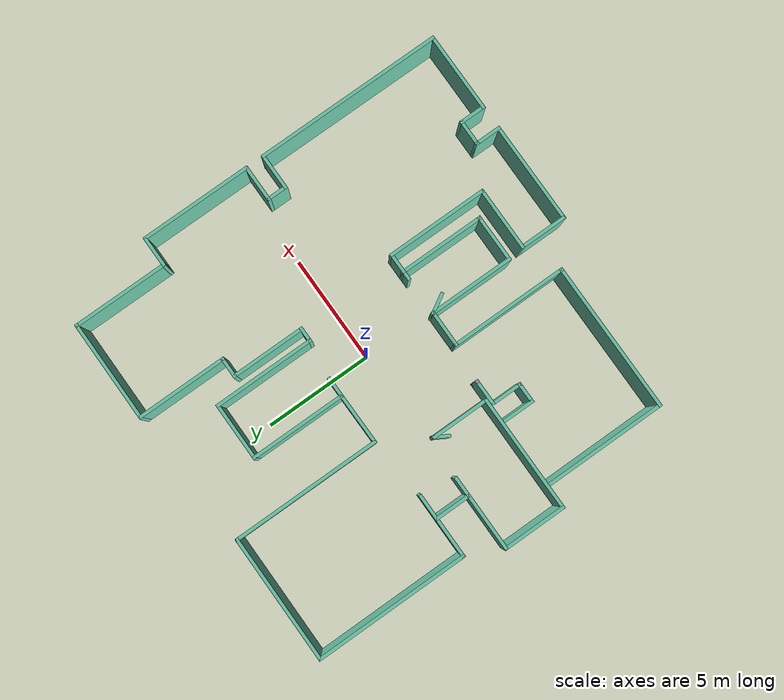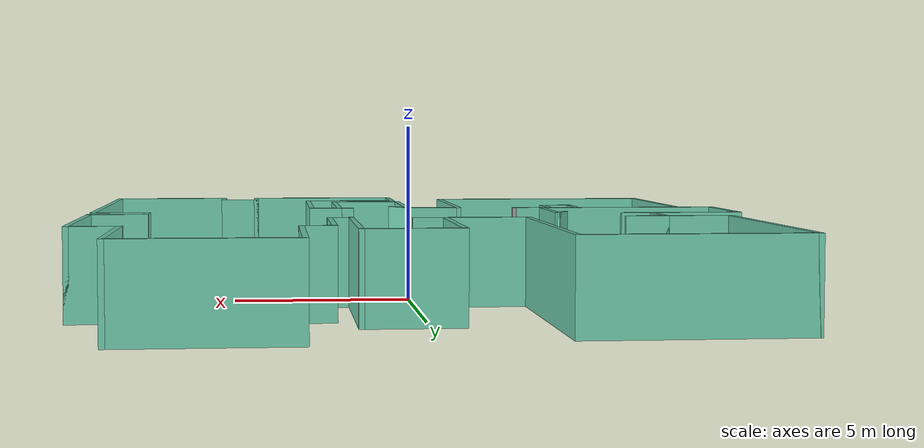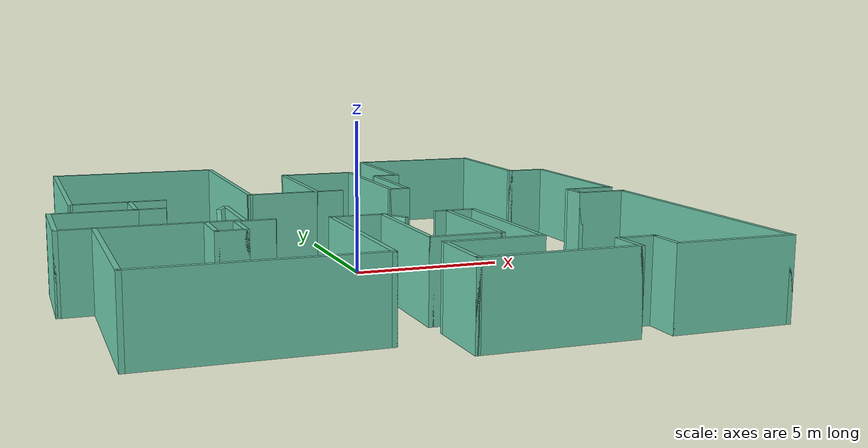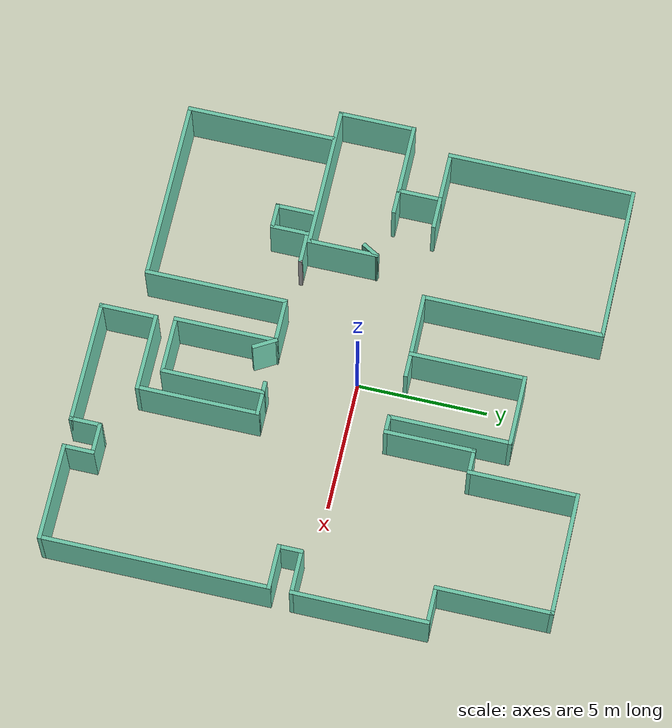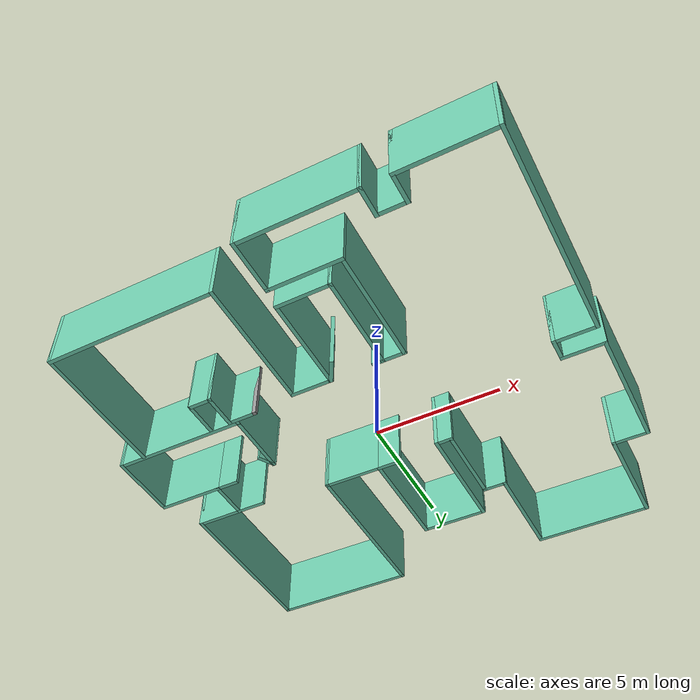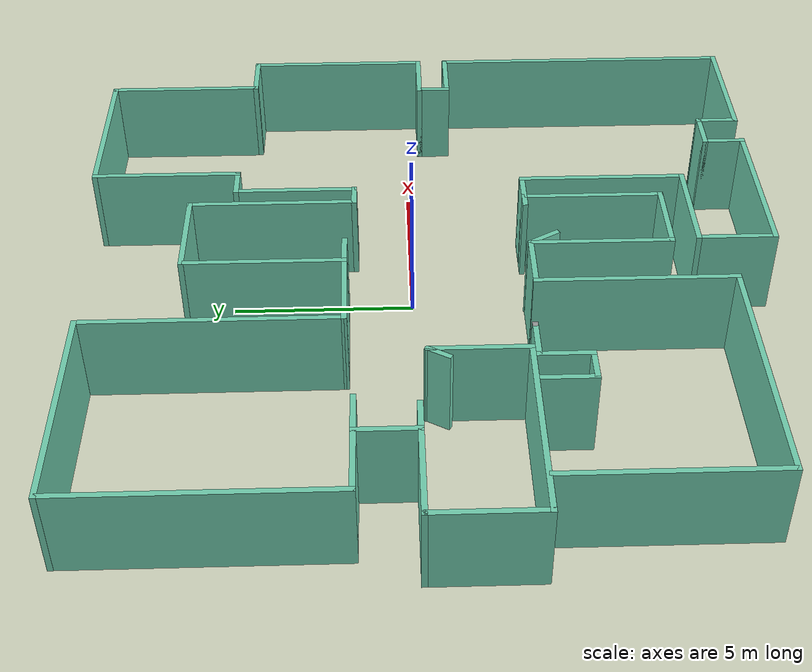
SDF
<?xml version='1.0'?>
<sdf version='1.6'>
  <model name='map_107'>
    <pose frame=''>-0.309786 -0.431329 0 0 -0 0</pose>
    <link name='Wall_10'>
      <collision name='Wall_10_Collision'>
        <geometry>
          <box>
            <size>2.75 0.15 2.5</size>
          </box>
        </geometry>
        <pose frame=''>0 0 1.25 0 -0 0</pose>
      </collision>
      <visual name='Wall_10_Visual'>
        <pose frame=''>0 0 1.25 0 -0 0</pose>
        <geometry>
          <box>
            <size>2.75 0.15 2.5</size>
          </box>
        </geometry>
        <material>
          <script>
            <uri>file://media/materials/scripts/gazebo.material</uri>
            <name>Gazebo/Grey</name>
          </script>
          <ambient>0.435294 0.796078 0.67451 1</ambient>
        </material>
        <meta>
          <layer>0</layer>
        </meta>
      </visual>
      <pose frame=''>-8.15979 0.403769 0 0 -0 3.14159</pose>
    </link>
    <link name='Wall_11'>
      <collision name='Wall_11_Collision'>
        <geometry>
          <box>
            <size>3 0.15 2.5</size>
          </box>
        </geometry>
        <pose frame=''>0 0 1.25 0 -0 0</pose>
      </collision>
      <visual name='Wall_11_Visual'>
        <pose frame=''>0 0 1.25 0 -0 0</pose>
        <geometry>
          <box>
            <size>3 0.15 2.5</size>
          </box>
        </geometry>
        <material>
          <script>
            <uri>file://media/materials/scripts/gazebo.material</uri>
            <name>Gazebo/Grey</name>
          </script>
          <ambient>0.435294 0.796078 0.67451 1</ambient>
        </material>
        <meta>
          <layer>0</layer>
        </meta>
      </visual>
      <pose frame=''>-9.45979 -1.02123 0 0 -0 -1.5708</pose>
    </link>
    <link name='Wall_12'>
      <collision name='Wall_12_Collision'>
        <geometry>
          <box>
            <size>5.5 0.15 2.5</size>
          </box>
        </geometry>
        <pose frame=''>0 0 1.25 0 -0 0</pose>
      </collision>
      <visual name='Wall_12_Visual'>
        <pose frame=''>0 0 1.25 0 -0 0</pose>
        <geometry>
          <box>
            <size>5.5 0.15 2.5</size>
          </box>
        </geometry>
        <material>
          <script>
            <uri>file://media/materials/scripts/gazebo.material</uri>
            <name>Gazebo/Grey</name>
          </script>
          <ambient>0.435294 0.796078 0.67451 1</ambient>
        </material>
        <meta>
          <layer>0</layer>
        </meta>
      </visual>
      <pose frame=''>-6.78479 -2.44623 0 0 -0 0</pose>
    </link>
    <link name='Wall_13'>
      <collision name='Wall_13_Collision'>
        <geometry>
          <box>
            <size>2.75 0.15 2.5</size>
          </box>
        </geometry>
        <pose frame=''>0 0 1.25 0 -0 0</pose>
      </collision>
      <visual name='Wall_13_Visual'>
        <pose frame=''>0 0 1.25 0 -0 0</pose>
        <geometry>
          <box>
            <size>2.75 0.15 2.5</size>
          </box>
        </geometry>
        <material>
          <script>
            <uri>file://media/materials/scripts/gazebo.material</uri>
            <name>Gazebo/Grey</name>
          </script>
          <ambient>0.435294 0.796078 0.67451 1</ambient>
        </material>
        <meta>
          <layer>0</layer>
        </meta>
      </visual>
      <pose frame=''>-4.10979 -1.14623 0 0 -0 1.5708</pose>
    </link>
    <link name='Wall_16'>
      <collision name='Wall_16_Collision'>
        <geometry>
          <box>
            <size>5.75 0.15 2.5</size>
          </box>
        </geometry>
        <pose frame=''>0 0 1.25 0 -0 0</pose>
      </collision>
      <visual name='Wall_16_Visual'>
        <pose frame=''>0 0 1.25 0 -0 0</pose>
        <geometry>
          <box>
            <size>5.75 0.15 2.5</size>
          </box>
        </geometry>
        <material>
          <script>
            <uri>file://media/materials/scripts/gazebo.material</uri>
            <name>Gazebo/Grey</name>
          </script>
          <ambient>0.435294 0.796078 0.67451 1</ambient>
        </material>
        <meta>
          <layer>0</layer>
        </meta>
      </visual>
      <pose frame=''>-8.39021 -5.325 0 0 -0 -1.5708</pose>
    </link>
    <link name='Wall_17'>
      <collision name='Wall_17_Collision'>
        <geometry>
          <box>
            <size>7 0.15 2.5</size>
          </box>
        </geometry>
        <pose frame=''>0 0 1.25 0 -0 0</pose>
      </collision>
      <visual name='Wall_17_Visual'>
        <pose frame=''>0 0 1.25 0 -0 0</pose>
        <geometry>
          <box>
            <size>7 0.15 2.5</size>
          </box>
        </geometry>
        <material>
          <script>
            <uri>file://media/materials/scripts/gazebo.material</uri>
            <name>Gazebo/Grey</name>
          </script>
          <ambient>0.435294 0.796078 0.67451 1</ambient>
        </material>
        <meta>
          <layer>0</layer>
        </meta>
      </visual>
      <pose frame=''>-4.96521 -8.125 0 0 -0 0</pose>
    </link>
    <link name='Wall_28'>
      <collision name='Wall_28_Collision'>
        <geometry>
          <box>
            <size>1.5 0.15 2.5</size>
          </box>
        </geometry>
        <pose frame=''>0 0 1.25 0 -0 0</pose>
      </collision>
      <visual name='Wall_28_Visual'>
        <pose frame=''>0 0 1.25 0 -0 0</pose>
        <geometry>
          <box>
            <size>1.5 0.15 2.5</size>
          </box>
        </geometry>
        <material>
          <script>
            <uri>file://media/materials/scripts/gazebo.material</uri>
            <name>Gazebo/Grey</name>
          </script>
          <ambient>0.435294 0.796078 0.67451 1</ambient>
        </material>
        <meta>
          <layer>0</layer>
        </meta>
      </visual>
      <pose frame=''>-5.23543 -3.27116 0 0 -0 -1.5708</pose>
    </link>
    <link name='Wall_29'>
      <collision name='Wall_29_Collision'>
        <geometry>
          <box>
            <size>1 0.15 2.5</size>
          </box>
        </geometry>
        <pose frame=''>0 0 1.25 0 -0 0</pose>
      </collision>
      <visual name='Wall_29_Visual'>
        <pose frame=''>0 0 1.25 0 -0 0</pose>
        <geometry>
          <box>
            <size>1 0.15 2.5</size>
          </box>
        </geometry>
        <material>
          <script>
            <uri>file://media/materials/scripts/gazebo.material</uri>
            <name>Gazebo/Grey</name>
          </script>
          <ambient>0.435294 0.796078 0.67451 1</ambient>
        </material>
        <meta>
          <layer>0</layer>
        </meta>
      </visual>
      <pose frame=''>-4.81043 -3.94616 0 0 -0 0</pose>
    </link>
    <link name='Wall_30'>
      <collision name='Wall_30_Collision'>
        <geometry>
          <box>
            <size>1.5 0.15 2.5</size>
          </box>
        </geometry>
        <pose frame=''>0 0 1.25 0 -0 0</pose>
      </collision>
      <visual name='Wall_30_Visual'>
        <pose frame=''>0 0 1.25 0 -0 0</pose>
        <geometry>
          <box>
            <size>1.5 0.15 2.5</size>
          </box>
        </geometry>
        <material>
          <script>
            <uri>file://media/materials/scripts/gazebo.material</uri>
            <name>Gazebo/Grey</name>
          </script>
          <ambient>0.435294 0.796078 0.67451 1</ambient>
        </material>
        <meta>
          <layer>0</layer>
        </meta>
      </visual>
      <pose frame=''>-4.38542 -3.27116 0 0 -0 1.5708</pose>
    </link>
    <link name='Wall_31'>
      <collision name='Wall_31_Collision'>
        <geometry>
          <box>
            <size>1.25 0.15 2.5</size>
          </box>
        </geometry>
        <pose frame=''>0 0 1.25 0 -0 0</pose>
      </collision>
      <visual name='Wall_31_Visual'>
        <pose frame=''>0 0 1.25 0 -0 0</pose>
        <geometry>
          <box>
            <size>1.25 0.15 2.5</size>
          </box>
        </geometry>
        <material>
          <script>
            <uri>file://media/materials/scripts/gazebo.material</uri>
            <name>Gazebo/Grey</name>
          </script>
          <ambient>0.435294 0.796078 0.67451 1</ambient>
        </material>
        <meta>
          <layer>0</layer>
        </meta>
      </visual>
      <pose frame=''>-3.83542 -2.59616 0 0 -0 0</pose>
    </link>
    <link name='Wall_32'>
      <collision name='Wall_32_Collision'>
        <geometry>
          <box>
            <size>0.16 0.15 2.5</size>
          </box>
        </geometry>
        <pose frame=''>0 0 1.25 0 -0 0</pose>
      </collision>
      <visual name='Wall_32_Visual'>
        <pose frame=''>0 0 1.25 0 -0 0</pose>
        <geometry>
          <box>
            <size>0.16 0.15 2.5</size>
          </box>
        </geometry>
        <material>
          <script>
            <uri>file://media/materials/scripts/gazebo.material</uri>
            <name>Gazebo/Grey</name>
          </script>
          <ambient>0 0 0 1</ambient>
        </material>
        <meta>
          <layer>0</layer>
        </meta>
      </visual>
      <pose frame=''>-3.28043 -2.59616 0 0 -0 0</pose>
    </link>
    <link name='Wall_33'>
      <collision name='Wall_33_Collision'>
        <geometry>
          <box>
            <size>5.5 0.15 2.5</size>
          </box>
        </geometry>
        <pose frame=''>0 0 1.25 0 -0 0</pose>
      </collision>
      <visual name='Wall_33_Visual'>
        <pose frame=''>0 0 1.25 0 -0 0</pose>
        <geometry>
          <box>
            <size>5.5 0.15 2.5</size>
          </box>
        </geometry>
        <material>
          <script>
            <uri>file://media/materials/scripts/gazebo.material</uri>
            <name>Gazebo/Grey</name>
          </script>
          <ambient>0.435294 0.796078 0.67451 1</ambient>
        </material>
        <meta>
          <layer>0</layer>
        </meta>
      </visual>
      <pose frame=''>-1.54021 -5.45 0 0 -0 1.5708</pose>
    </link>
    <link name='Wall_34'>
      <collision name='Wall_34_Collision'>
        <geometry>
          <box>
            <size>1.75 0.15 2.5</size>
          </box>
        </geometry>
        <pose frame=''>0 0 1.25 0 -0 0</pose>
      </collision>
      <visual name='Wall_34_Visual'>
        <pose frame=''>0 0 1.25 0 -0 0</pose>
        <geometry>
          <box>
            <size>1.75 0.15 2.5</size>
          </box>
        </geometry>
        <material>
          <script>
            <uri>file://media/materials/scripts/gazebo.material</uri>
            <name>Gazebo/Grey</name>
          </script>
          <ambient>0.435294 0.796078 0.67451 1</ambient>
        </material>
        <meta>
          <layer>0</layer>
        </meta>
      </visual>
      <pose frame=''>-0.74021 -2.775 0 0 -0 0</pose>
    </link>
    <link name='Wall_35'>
      <collision name='Wall_35_Collision'>
        <geometry>
          <box>
            <size>4 0.15 2.5</size>
          </box>
        </geometry>
        <pose frame=''>0 0 1.25 0 -0 0</pose>
      </collision>
      <visual name='Wall_35_Visual'>
        <pose frame=''>0 0 1.25 0 -0 0</pose>
        <geometry>
          <box>
            <size>4 0.15 2.5</size>
          </box>
        </geometry>
        <material>
          <script>
            <uri>file://media/materials/scripts/gazebo.material</uri>
            <name>Gazebo/Grey</name>
          </script>
          <ambient>0.435294 0.796078 0.67451 1</ambient>
        </material>
        <meta>
          <layer>0</layer>
        </meta>
      </visual>
      <pose frame=''>0.05979 -4.7 0 0 -0 -1.5708</pose>
    </link>
    <link name='Wall_36'>
      <collision name='Wall_36_Collision'>
        <geometry>
          <box>
            <size>2.25 0.15 2.5</size>
          </box>
        </geometry>
        <pose frame=''>0 0 1.25 0 -0 0</pose>
      </collision>
      <visual name='Wall_36_Visual'>
        <pose frame=''>0 0 1.25 0 -0 0</pose>
        <geometry>
          <box>
            <size>2.25 0.15 2.5</size>
          </box>
        </geometry>
        <material>
          <script>
            <uri>file://media/materials/scripts/gazebo.material</uri>
            <name>Gazebo/Grey</name>
          </script>
          <ambient>0.435294 0.796078 0.67451 1</ambient>
        </material>
        <meta>
          <layer>0</layer>
        </meta>
      </visual>
      <pose frame=''>1.10979 -6.625 0 0 -0 0</pose>
    </link>
    <link name='Wall_37'>
      <collision name='Wall_37_Collision'>
        <geometry>
          <box>
            <size>4 0.15 2.5</size>
          </box>
        </geometry>
        <pose frame=''>0 0 1.25 0 -0 0</pose>
      </collision>
      <visual name='Wall_37_Visual'>
        <pose frame=''>0 0 1.25 0 -0 0</pose>
        <geometry>
          <box>
            <size>4 0.15 2.5</size>
          </box>
        </geometry>
        <material>
          <script>
            <uri>file://media/materials/scripts/gazebo.material</uri>
            <name>Gazebo/Grey</name>
          </script>
          <ambient>0.435294 0.796078 0.67451 1</ambient>
        </material>
        <meta>
          <layer>0</layer>
        </meta>
      </visual>
      <pose frame=''>2.15979 -4.7 0 0 -0 1.5708</pose>
    </link>
    <link name='Wall_38'>
      <collision name='Wall_38_Collision'>
        <geometry>
          <box>
            <size>0.5 0.15 2.5</size>
          </box>
        </geometry>
        <pose frame=''>0 0 1.25 0 -0 0</pose>
      </collision>
      <visual name='Wall_38_Visual'>
        <pose frame=''>0 0 1.25 0 -0 0</pose>
        <geometry>
          <box>
            <size>0.5 0.15 2.5</size>
          </box>
        </geometry>
        <material>
          <script>
            <uri>file://media/materials/scripts/gazebo.material</uri>
            <name>Gazebo/Grey</name>
          </script>
          <ambient>0.435294 0.796078 0.67451 1</ambient>
        </material>
        <meta>
          <layer>0</layer>
        </meta>
      </visual>
      <pose frame=''>1.98479 -2.775 0 0 -0 3.14159</pose>
    </link>
    <link name='Wall_41'>
      <collision name='Wall_41_Collision'>
        <geometry>
          <box>
            <size>1 0.15 2.5</size>
          </box>
        </geometry>
        <pose frame=''>0 0 1.25 0 -0 0</pose>
      </collision>
      <visual name='Wall_41_Visual'>
        <pose frame=''>0 0 1.25 0 -0 0</pose>
        <geometry>
          <box>
            <size>1 0.15 2.5</size>
          </box>
        </geometry>
        <material>
          <script>
            <uri>file://media/materials/scripts/gazebo.material</uri>
            <name>Gazebo/Grey</name>
          </script>
          <ambient>0.435294 0.796078 0.67451 1</ambient>
        </material>
        <meta>
          <layer>0</layer>
        </meta>
      </visual>
      <pose frame=''>2.58479 -2.775 0 0 -0 0</pose>
    </link>
    <link name='Wall_42'>
      <collision name='Wall_42_Collision'>
        <geometry>
          <box>
            <size>4.75 0.15 2.5</size>
          </box>
        </geometry>
        <pose frame=''>0 0 1.25 0 -0 0</pose>
      </collision>
      <visual name='Wall_42_Visual'>
        <pose frame=''>0 0 1.25 0 -0 0</pose>
        <geometry>
          <box>
            <size>4.75 0.15 2.5</size>
          </box>
        </geometry>
        <material>
          <script>
            <uri>file://media/materials/scripts/gazebo.material</uri>
            <name>Gazebo/Grey</name>
          </script>
          <ambient>0.435294 0.796078 0.67451 1</ambient>
        </material>
        <meta>
          <layer>0</layer>
        </meta>
      </visual>
      <pose frame=''>3.00979 -5.075 0 0 -0 -1.5708</pose>
    </link>
    <link name='Wall_43'>
      <collision name='Wall_43_Collision'>
        <geometry>
          <box>
            <size>3 0.15 2.5</size>
          </box>
        </geometry>
        <pose frame=''>0 0 1.25 0 -0 0</pose>
      </collision>
      <visual name='Wall_43_Visual'>
        <pose frame=''>0 0 1.25 0 -0 0</pose>
        <geometry>
          <box>
            <size>3 0.15 2.5</size>
          </box>
        </geometry>
        <material>
          <script>
            <uri>file://media/materials/scripts/gazebo.material</uri>
            <name>Gazebo/Grey</name>
          </script>
          <ambient>0.435294 0.796078 0.67451 1</ambient>
        </material>
        <meta>
          <layer>0</layer>
        </meta>
      </visual>
      <pose frame=''>1.58479 -7.375 0 0 -0 3.14159</pose>
    </link>
    <link name='Wall_44'>
      <collision name='Wall_44_Collision'>
        <geometry>
          <box>
            <size>2.25 0.15 2.5</size>
          </box>
        </geometry>
        <pose frame=''>0 0 1.25 0 -0 0</pose>
      </collision>
      <visual name='Wall_44_Visual'>
        <pose frame=''>0 0 1.25 0 -0 0</pose>
        <geometry>
          <box>
            <size>2.25 0.15 2.5</size>
          </box>
        </geometry>
        <material>
          <script>
            <uri>file://media/materials/scripts/gazebo.material</uri>
            <name>Gazebo/Grey</name>
          </script>
          <ambient>0.435294 0.796078 0.67451 1</ambient>
        </material>
        <meta>
          <layer>0</layer>
        </meta>
      </visual>
      <pose frame=''>0.15979 -8.425 0 0 -0 -1.5708</pose>
    </link>
    <link name='Wall_47'>
      <collision name='Wall_47_Collision'>
        <geometry>
          <box>
            <size>4.75 0.15 2.5</size>
          </box>
        </geometry>
        <pose frame=''>0 0 1.25 0 -0 0</pose>
      </collision>
      <visual name='Wall_47_Visual'>
        <pose frame=''>0 0 1.25 0 -0 0</pose>
        <geometry>
          <box>
            <size>4.75 0.15 2.5</size>
          </box>
        </geometry>
        <material>
          <script>
            <uri>file://media/materials/scripts/gazebo.material</uri>
            <name>Gazebo/Grey</name>
          </script>
          <ambient>0.435294 0.796078 0.67451 1</ambient>
        </material>
        <meta>
          <layer>0</layer>
        </meta>
      </visual>
      <pose frame=''>2.45979 -9.475 0 0 -0 0</pose>
    </link>
    <link name='Wall_48'>
      <collision name='Wall_48_Collision'>
        <geometry>
          <box>
            <size>1.25 0.15 2.5</size>
          </box>
        </geometry>
        <pose frame=''>0 0 1.25 0 -0 0</pose>
      </collision>
      <visual name='Wall_48_Visual'>
        <pose frame=''>0 0 1.25 0 -0 0</pose>
        <geometry>
          <box>
            <size>1.25 0.15 2.5</size>
          </box>
        </geometry>
        <material>
          <script>
            <uri>file://media/materials/scripts/gazebo.material</uri>
            <name>Gazebo/Grey</name>
          </script>
          <ambient>0.435294 0.796078 0.67451 1</ambient>
        </material>
        <meta>
          <layer>0</layer>
        </meta>
      </visual>
      <pose frame=''>4.75979 -8.925 0 0 -0 1.5708</pose>
    </link>
    <link name='Wall_49'>
      <collision name='Wall_49_Collision'>
        <geometry>
          <box>
            <size>1.25 0.15 2.5</size>
          </box>
        </geometry>
        <pose frame=''>0 0 1.25 0 -0 0</pose>
      </collision>
      <visual name='Wall_49_Visual'>
        <pose frame=''>0 0 1.25 0 -0 0</pose>
        <geometry>
          <box>
            <size>1.25 0.15 2.5</size>
          </box>
        </geometry>
        <material>
          <script>
            <uri>file://media/materials/scripts/gazebo.material</uri>
            <name>Gazebo/Grey</name>
          </script>
          <ambient>0.435294 0.796078 0.67451 1</ambient>
        </material>
        <meta>
          <layer>0</layer>
        </meta>
      </visual>
      <pose frame=''>5.30979 -8.375 0 0 -0 0</pose>
    </link>
    <link name='Wall_50'>
      <collision name='Wall_50_Collision'>
        <geometry>
          <box>
            <size>1.25 0.15 2.5</size>
          </box>
        </geometry>
        <pose frame=''>0 0 1.25 0 -0 0</pose>
      </collision>
      <visual name='Wall_50_Visual'>
        <pose frame=''>0 0 1.25 0 -0 0</pose>
        <geometry>
          <box>
            <size>1.25 0.15 2.5</size>
          </box>
        </geometry>
        <material>
          <script>
            <uri>file://media/materials/scripts/gazebo.material</uri>
            <name>Gazebo/Grey</name>
          </script>
          <ambient>0.435294 0.796078 0.67451 1</ambient>
        </material>
        <meta>
          <layer>0</layer>
        </meta>
      </visual>
      <pose frame=''>5.85979 -8.925 0 0 -0 -1.5708</pose>
    </link>
    <link name='Wall_51'>
      <collision name='Wall_51_Collision'>
        <geometry>
          <box>
            <size>3.75 0.15 2.5</size>
          </box>
        </geometry>
        <pose frame=''>0 0 1.25 0 -0 0</pose>
      </collision>
      <visual name='Wall_51_Visual'>
        <pose frame=''>0 0 1.25 0 -0 0</pose>
        <geometry>
          <box>
            <size>3.75 0.15 2.5</size>
          </box>
        </geometry>
        <material>
          <script>
            <uri>file://media/materials/scripts/gazebo.material</uri>
            <name>Gazebo/Grey</name>
          </script>
          <ambient>0.435294 0.796078 0.67451 1</ambient>
        </material>
        <meta>
          <layer>0</layer>
        </meta>
      </visual>
      <pose frame=''>7.65979 -9.475 0 0 -0 0</pose>
    </link>
    <link name='Wall_53'>
      <collision name='Wall_53_Collision'>
        <geometry>
          <box>
            <size>1.5 0.15 2.5</size>
          </box>
        </geometry>
        <pose frame=''>0 0 1.25 0 -0 0</pose>
      </collision>
      <visual name='Wall_53_Visual'>
        <pose frame=''>0 0 1.25 0 -0 0</pose>
        <geometry>
          <box>
            <size>1.5 0.15 2.5</size>
          </box>
        </geometry>
        <material>
          <script>
            <uri>file://media/materials/scripts/gazebo.material</uri>
            <name>Gazebo/Grey</name>
          </script>
          <ambient>0.435294 0.796078 0.67451 1</ambient>
        </material>
        <meta>
          <layer>0</layer>
        </meta>
      </visual>
      <pose frame=''>8.78479 5.125 0 0 -0 3.14159</pose>
    </link>
    <link name='Wall_54'>
      <collision name='Wall_54_Collision'>
        <geometry>
          <box>
            <size>4.5 0.15 2.5</size>
          </box>
        </geometry>
        <pose frame=''>0 0 1.25 0 -0 0</pose>
      </collision>
      <visual name='Wall_54_Visual'>
        <pose frame=''>0 0 1.25 0 -0 0</pose>
        <geometry>
          <box>
            <size>4.5 0.15 2.5</size>
          </box>
        </geometry>
        <material>
          <script>
            <uri>file://media/materials/scripts/gazebo.material</uri>
            <name>Gazebo/Grey</name>
          </script>
          <ambient>0.435294 0.796078 0.67451 1</ambient>
        </material>
        <meta>
          <layer>0</layer>
        </meta>
      </visual>
      <pose frame=''>8.10979 7.3 0 0 -0 1.5708</pose>
    </link>
    <link name='Wall_55'>
      <collision name='Wall_55_Collision'>
        <geometry>
          <box>
            <size>4.75 0.15 2.5</size>
          </box>
        </geometry>
        <pose frame=''>0 0 1.25 0 -0 0</pose>
      </collision>
      <visual name='Wall_55_Visual'>
        <pose frame=''>0 0 1.25 0 -0 0</pose>
        <geometry>
          <box>
            <size>4.75 0.15 2.5</size>
          </box>
        </geometry>
        <material>
          <script>
            <uri>file://media/materials/scripts/gazebo.material</uri>
            <name>Gazebo/Grey</name>
          </script>
          <ambient>0.435294 0.796078 0.67451 1</ambient>
        </material>
        <meta>
          <layer>0</layer>
        </meta>
      </visual>
      <pose frame=''>5.80979 9.475 0 0 -0 3.14159</pose>
    </link>
    <link name='Wall_56'>
      <collision name='Wall_56_Collision'>
        <geometry>
          <box>
            <size>4.25 0.15 2.5</size>
          </box>
        </geometry>
        <pose frame=''>0 0 1.25 0 -0 0</pose>
      </collision>
      <visual name='Wall_56_Visual'>
        <pose frame=''>0 0 1.25 0 -0 0</pose>
        <geometry>
          <box>
            <size>4.25 0.15 2.5</size>
          </box>
        </geometry>
        <material>
          <script>
            <uri>file://media/materials/scripts/gazebo.material</uri>
            <name>Gazebo/Grey</name>
          </script>
          <ambient>0.435294 0.796078 0.67451 1</ambient>
        </material>
        <meta>
          <layer>0</layer>
        </meta>
      </visual>
      <pose frame=''>3.50979 7.425 0 0 -0 -1.5708</pose>
    </link>
    <link name='Wall_57'>
      <collision name='Wall_57_Collision'>
        <geometry>
          <box>
            <size>1 0.15 2.5</size>
          </box>
        </geometry>
        <pose frame=''>0 0 1.25 0 -0 0</pose>
      </collision>
      <visual name='Wall_57_Visual'>
        <pose frame=''>0 0 1.25 0 -0 0</pose>
        <geometry>
          <box>
            <size>1 0.15 2.5</size>
          </box>
        </geometry>
        <material>
          <script>
            <uri>file://media/materials/scripts/gazebo.material</uri>
            <name>Gazebo/Grey</name>
          </script>
          <ambient>0.435294 0.796078 0.67451 1</ambient>
        </material>
        <meta>
          <layer>0</layer>
        </meta>
      </visual>
      <pose frame=''>3.08479 5.375 0 0 -0 3.14159</pose>
    </link>
    <link name='Wall_58'>
      <collision name='Wall_58_Collision'>
        <geometry>
          <box>
            <size>3.5 0.15 2.5</size>
          </box>
        </geometry>
        <pose frame=''>0 0 1.25 0 -0 0</pose>
      </collision>
      <visual name='Wall_58_Visual'>
        <pose frame=''>0 0 1.25 0 -0 0</pose>
        <geometry>
          <box>
            <size>3.5 0.15 2.5</size>
          </box>
        </geometry>
        <material>
          <script>
            <uri>file://media/materials/scripts/gazebo.material</uri>
            <name>Gazebo/Grey</name>
          </script>
          <ambient>0.435294 0.796078 0.67451 1</ambient>
        </material>
        <meta>
          <layer>0</layer>
        </meta>
      </visual>
      <pose frame=''>2.65979 3.7 0 0 -0 -1.5708</pose>
    </link>
    <link name='Wall_59'>
      <collision name='Wall_59_Collision'>
        <geometry>
          <box>
            <size>0.75 0.15 2.5</size>
          </box>
        </geometry>
        <pose frame=''>0 0 1.25 0 -0 0</pose>
      </collision>
      <visual name='Wall_59_Visual'>
        <pose frame=''>0 0 1.25 0 -0 0</pose>
        <geometry>
          <box>
            <size>0.75 0.15 2.5</size>
          </box>
        </geometry>
        <material>
          <script>
            <uri>file://media/materials/scripts/gazebo.material</uri>
            <name>Gazebo/Grey</name>
          </script>
          <ambient>0.435294 0.796078 0.67451 1</ambient>
        </material>
        <meta>
          <layer>0</layer>
        </meta>
      </visual>
      <pose frame=''>2.35979 2.025 0 0 -0 3.14159</pose>
    </link>
    <link name='Wall_60'>
      <collision name='Wall_60_Collision'>
        <geometry>
          <box>
            <size>4.75 0.15 2.5</size>
          </box>
        </geometry>
        <pose frame=''>0 0 1.25 0 -0 0</pose>
      </collision>
      <visual name='Wall_60_Visual'>
        <pose frame=''>0 0 1.25 0 -0 0</pose>
        <geometry>
          <box>
            <size>4.75 0.15 2.5</size>
          </box>
        </geometry>
        <material>
          <script>
            <uri>file://media/materials/scripts/gazebo.material</uri>
            <name>Gazebo/Grey</name>
          </script>
          <ambient>0.435294 0.796078 0.67451 1</ambient>
        </material>
        <meta>
          <layer>0</layer>
        </meta>
      </visual>
      <pose frame=''>2.05979 4.325 0 0 -0 1.5708</pose>
    </link>
    <link name='Wall_61'>
      <collision name='Wall_61_Collision'>
        <geometry>
          <box>
            <size>2.75 0.15 2.5</size>
          </box>
        </geometry>
        <pose frame=''>0 0 1.25 0 -0 0</pose>
      </collision>
      <visual name='Wall_61_Visual'>
        <pose frame=''>0 0 1.25 0 -0 0</pose>
        <geometry>
          <box>
            <size>2.75 0.15 2.5</size>
          </box>
        </geometry>
        <material>
          <script>
            <uri>file://media/materials/scripts/gazebo.material</uri>
            <name>Gazebo/Grey</name>
          </script>
          <ambient>0.435294 0.796078 0.67451 1</ambient>
        </material>
        <meta>
          <layer>0</layer>
        </meta>
      </visual>
      <pose frame=''>0.75979 6.625 0 0 -0 3.14159</pose>
    </link>
    <link name='Wall_62'>
      <collision name='Wall_62_Collision'>
        <geometry>
          <box>
            <size>4.5 0.15 2.5</size>
          </box>
        </geometry>
        <pose frame=''>0 0 1.25 0 -0 0</pose>
      </collision>
      <visual name='Wall_62_Visual'>
        <pose frame=''>0 0 1.25 0 -0 0</pose>
        <geometry>
          <box>
            <size>4.5 0.15 2.5</size>
          </box>
        </geometry>
        <material>
          <script>
            <uri>file://media/materials/scripts/gazebo.material</uri>
            <name>Gazebo/Grey</name>
          </script>
          <ambient>0.435294 0.796078 0.67451 1</ambient>
        </material>
        <meta>
          <layer>0</layer>
        </meta>
      </visual>
      <pose frame=''>-0.54021 4.45 0 0 -0 -1.5708</pose>
    </link>
    <link name='Wall_63'>
      <collision name='Wall_63_Collision'>
        <geometry>
          <box>
            <size>1 0.15 2.5</size>
          </box>
        </geometry>
        <pose frame=''>0 0 1.25 0 -0 0</pose>
      </collision>
      <visual name='Wall_63_Visual'>
        <pose frame=''>0 0 1.25 0 -0 0</pose>
        <geometry>
          <box>
            <size>1 0.15 2.5</size>
          </box>
        </geometry>
        <material>
          <script>
            <uri>file://media/materials/scripts/gazebo.material</uri>
            <name>Gazebo/Grey</name>
          </script>
          <ambient>0.435294 0.796078 0.67451 1</ambient>
        </material>
        <meta>
          <layer>0</layer>
        </meta>
      </visual>
      <pose frame=''>-0.11521 2.275 0 0 -0 0</pose>
    </link>
    <link name='Wall_65'>
      <collision name='Wall_65_Collision'>
        <geometry>
          <box>
            <size>6 0.15 2.5</size>
          </box>
        </geometry>
        <pose frame=''>0 0 1.25 0 -0 0</pose>
      </collision>
      <visual name='Wall_65_Visual'>
        <pose frame=''>0 0 1.25 0 -0 0</pose>
        <geometry>
          <box>
            <size>6 0.15 2.5</size>
          </box>
        </geometry>
        <material>
          <script>
            <uri>file://media/materials/scripts/gazebo.material</uri>
            <name>Gazebo/Grey</name>
          </script>
          <ambient>0.435294 0.796078 0.67451 1</ambient>
        </material>
        <meta>
          <layer>0</layer>
        </meta>
      </visual>
      <pose frame=''>-5.78479 9.10377 0 0 -0 0</pose>
    </link>
    <link name='Wall_66'>
      <collision name='Wall_66_Collision'>
        <geometry>
          <box>
            <size>7 0.15 2.5</size>
          </box>
        </geometry>
        <pose frame=''>0 0 1.25 0 -0 0</pose>
      </collision>
      <visual name='Wall_66_Visual'>
        <pose frame=''>0 0 1.25 0 -0 0</pose>
        <geometry>
          <box>
            <size>7 0.15 2.5</size>
          </box>
        </geometry>
        <material>
          <script>
            <uri>file://media/materials/scripts/gazebo.material</uri>
            <name>Gazebo/Grey</name>
          </script>
          <ambient>0.435294 0.796078 0.67451 1</ambient>
        </material>
        <meta>
          <layer>0</layer>
        </meta>
      </visual>
      <pose frame=''>-2.85979 5.67877 0 0 -0 -1.5708</pose>
    </link>
    <link name='Wall_67'>
      <collision name='Wall_67_Collision'>
        <geometry>
          <box>
            <size>2.46968 0.15 2.5</size>
          </box>
        </geometry>
        <pose frame=''>0 0 1.25 0 -0 0</pose>
      </collision>
      <visual name='Wall_67_Visual'>
        <pose frame=''>0 0 1.25 0 -0 0</pose>
        <geometry>
          <box>
            <size>2.46968 0.15 2.5</size>
          </box>
        </geometry>
        <material>
          <script>
            <uri>file://media/materials/scripts/gazebo.material</uri>
            <name>Gazebo/Grey</name>
          </script>
          <ambient>0.435294 0.796078 0.67451 1</ambient>
        </material>
        <meta>
          <layer>0</layer>
        </meta>
      </visual>
      <pose frame=''>-1.7 2.26438 0 0 -0 0.009153</pose>
    </link>
    <link name='Wall_69'>
      <collision name='Wall_69_Collision'>
        <geometry>
          <box>
            <size>1.25 0.15 2.5</size>
          </box>
        </geometry>
        <pose frame=''>0 0 1.25 0 -0 0</pose>
      </collision>
      <visual name='Wall_69_Visual'>
        <pose frame=''>0 0 1.25 0 -0 0</pose>
        <geometry>
          <box>
            <size>1.25 0.15 2.5</size>
          </box>
        </geometry>
        <material>
          <script>
            <uri>file://media/materials/scripts/gazebo.material</uri>
            <name>Gazebo/Grey</name>
          </script>
          <ambient>0.435294 0.796078 0.67451 1</ambient>
        </material>
        <meta>
          <layer>0</layer>
        </meta>
      </visual>
      <pose frame=''>-6.30979 2.00377 0 0 -0 0</pose>
    </link>
    <link name='Wall_7'>
      <collision name='Wall_7_Collision'>
        <geometry>
          <box>
            <size>7.25 0.15 2.5</size>
          </box>
        </geometry>
        <pose frame=''>0 0 1.25 0 -0 0</pose>
      </collision>
      <visual name='Wall_7_Visual'>
        <pose frame=''>0 0 1.25 0 -0 0</pose>
        <geometry>
          <box>
            <size>7.25 0.15 2.5</size>
          </box>
        </geometry>
        <material>
          <script>
            <uri>file://media/materials/scripts/gazebo.material</uri>
            <name>Gazebo/Grey</name>
          </script>
          <ambient>0.435294 0.796078 0.67451 1</ambient>
        </material>
        <meta>
          <layer>0</layer>
        </meta>
      </visual>
      <pose frame=''>-8.70979 5.55377 0 0 -0 -1.5708</pose>
    </link>
    <link name='Wall_71'>
      <collision name='Wall_71_Collision'>
        <geometry>
          <box>
            <size>1 0.15 2.5</size>
          </box>
        </geometry>
        <pose frame=''>0 0 1.25 0 -0 0</pose>
      </collision>
      <visual name='Wall_71_Visual'>
        <pose frame=''>0 0 1.25 0 -0 0</pose>
        <geometry>
          <box>
            <size>1 0.15 2.5</size>
          </box>
        </geometry>
        <material>
          <script>
            <uri>file://media/materials/scripts/gazebo.material</uri>
            <name>Gazebo/Grey</name>
          </script>
          <ambient>0.435294 0.796078 0.67451 1</ambient>
        </material>
        <meta>
          <layer>0</layer>
        </meta>
      </visual>
      <pose frame=''>0.27229 -3.14306 0 0 -0 -1.0472</pose>
    </link>
    <link name='Wall_73'>
      <collision name='Wall_73_Collision'>
        <geometry>
          <box>
            <size>5.25 0.15 2.5</size>
          </box>
        </geometry>
        <pose frame=''>0 0 1.25 0 -0 0</pose>
      </collision>
      <visual name='Wall_73_Visual'>
        <pose frame=''>0 0 1.25 0 -0 0</pose>
        <geometry>
          <box>
            <size>5.25 0.15 2.5</size>
          </box>
        </geometry>
        <material>
          <script>
            <uri>file://media/materials/scripts/gazebo.material</uri>
            <name>Gazebo/Grey</name>
          </script>
          <ambient>0.435294 0.796078 0.67451 1</ambient>
        </material>
        <meta>
          <layer>0</layer>
        </meta>
      </visual>
      <pose frame=''>9.45979 2.575 0 0 -0 -1.5708</pose>
    </link>
    <link name='Wall_74'>
      <collision name='Wall_74_Collision'>
        <geometry>
          <box>
            <size>1.75 0.15 2.5</size>
          </box>
        </geometry>
        <pose frame=''>0 0 1.25 0 -0 0</pose>
      </collision>
      <visual name='Wall_74_Visual'>
        <pose frame=''>0 0 1.25 0 -0 0</pose>
        <geometry>
          <box>
            <size>1.75 0.15 2.5</size>
          </box>
        </geometry>
        <material>
          <script>
            <uri>file://media/materials/scripts/gazebo.material</uri>
            <name>Gazebo/Grey</name>
          </script>
          <ambient>0.435294 0.796078 0.67451 1</ambient>
        </material>
        <meta>
          <layer>0</layer>
        </meta>
      </visual>
      <pose frame=''>8.65979 0.025 0 0 -0 3.14159</pose>
    </link>
    <link name='Wall_75'>
      <collision name='Wall_75_Collision'>
        <geometry>
          <box>
            <size>1 0.15 2.5</size>
          </box>
        </geometry>
        <pose frame=''>0 0 1.25 0 -0 0</pose>
      </collision>
      <visual name='Wall_75_Visual'>
        <pose frame=''>0 0 1.25 0 -0 0</pose>
        <geometry>
          <box>
            <size>1 0.15 2.5</size>
          </box>
        </geometry>
        <material>
          <script>
            <uri>file://media/materials/scripts/gazebo.material</uri>
            <name>Gazebo/Grey</name>
          </script>
          <ambient>0.435294 0.796078 0.67451 1</ambient>
        </material>
        <meta>
          <layer>0</layer>
        </meta>
      </visual>
      <pose frame=''>7.85979 -0.4 0 0 -0 -1.5708</pose>
    </link>
    <link name='Wall_79'>
      <collision name='Wall_79_Collision'>
        <geometry>
          <box>
            <size>1.75 0.15 2.5</size>
          </box>
        </geometry>
        <pose frame=''>0 0 1.25 0 -0 0</pose>
      </collision>
      <visual name='Wall_79_Visual'>
        <pose frame=''>0 0 1.25 0 -0 0</pose>
        <geometry>
          <box>
            <size>1.75 0.15 2.5</size>
          </box>
        </geometry>
        <material>
          <script>
            <uri>file://media/materials/scripts/gazebo.material</uri>
            <name>Gazebo/Grey</name>
          </script>
          <ambient>0.435294 0.796078 0.67451 1</ambient>
        </material>
        <meta>
          <layer>0</layer>
        </meta>
      </visual>
      <pose frame=''>8.65979 -0.825 0 0 -0 0</pose>
    </link>
    <link name='Wall_8'>
      <collision name='Wall_8_Collision'>
        <geometry>
          <box>
            <size>2 0.15 2.5</size>
          </box>
        </geometry>
        <pose frame=''>0 0 1.25 0 -0 0</pose>
      </collision>
      <visual name='Wall_8_Visual'>
        <pose frame=''>0 0 1.25 0 -0 0</pose>
        <geometry>
          <box>
            <size>2 0.15 2.5</size>
          </box>
        </geometry>
        <material>
          <script>
            <uri>file://media/materials/scripts/gazebo.material</uri>
            <name>Gazebo/Grey</name>
          </script>
          <ambient>0.435294 0.796078 0.67451 1</ambient>
        </material>
        <meta>
          <layer>0</layer>
        </meta>
      </visual>
      <pose frame=''>-7.78479 2.00377 0 0 -0 0</pose>
    </link>
    <link name='Wall_80'>
      <collision name='Wall_80_Collision'>
        <geometry>
          <box>
            <size>8.8 0.15 2.5</size>
          </box>
        </geometry>
        <pose frame=''>0 0 1.25 0 -0 0</pose>
      </collision>
      <visual name='Wall_80_Visual'>
        <pose frame=''>0 0 1.25 0 -0 0</pose>
        <geometry>
          <box>
            <size>8.8 0.15 2.5</size>
          </box>
        </geometry>
        <material>
          <script>
            <uri>file://media/materials/scripts/gazebo.material</uri>
            <name>Gazebo/Grey</name>
          </script>
          <ambient>0.435294 0.796078 0.67451 1</ambient>
        </material>
        <meta>
          <layer>0</layer>
        </meta>
      </visual>
      <pose frame=''>9.45979 -5.15 0 0 -0 -1.5708</pose>
    </link>
    <link name='Wall_82'>
      <collision name='Wall_82_Collision'>
        <geometry>
          <box>
            <size>1 0.15 2.5</size>
          </box>
        </geometry>
        <pose frame=''>0 0 1.25 0 -0 0</pose>
      </collision>
      <visual name='Wall_82_Visual'>
        <pose frame=''>0 0 1.25 0 -0 0</pose>
        <geometry>
          <box>
            <size>1 0.15 2.5</size>
          </box>
        </geometry>
        <material>
          <script>
            <uri>file://media/materials/scripts/gazebo.material</uri>
            <name>Gazebo/Grey</name>
          </script>
          <ambient>0.435294 0.796078 0.67451 1</ambient>
        </material>
        <meta>
          <layer>0</layer>
        </meta>
      </visual>
      <pose frame=''>-6.43479 0.403769 0 0 -0 0</pose>
    </link>
    <link name='Wall_84'>
      <collision name='Wall_84_Collision'>
        <geometry>
          <box>
            <size>0.75 0.15 2.5</size>
          </box>
        </geometry>
        <pose frame=''>0 0 1.25 0 -0 0</pose>
      </collision>
      <visual name='Wall_84_Visual'>
        <pose frame=''>0 0 1.25 0 -0 0</pose>
        <geometry>
          <box>
            <size>0.75 0.15 2.5</size>
          </box>
        </geometry>
        <material>
          <script>
            <uri>file://media/materials/scripts/gazebo.material</uri>
            <name>Gazebo/Grey</name>
          </script>
          <ambient>0.435294 0.796078 0.67451 1</ambient>
        </material>
        <meta>
          <layer>0</layer>
        </meta>
      </visual>
      <pose frame=''>-4.25979 -0.106039 0 0 -0 -2.0944</pose>
    </link>
    <link name='Wall_9'>
      <collision name='Wall_9_Collision'>
        <geometry>
          <box>
            <size>1.75 0.15 2.5</size>
          </box>
        </geometry>
        <pose frame=''>0 0 1.25 0 -0 0</pose>
      </collision>
      <visual name='Wall_9_Visual'>
        <pose frame=''>0 0 1.25 0 -0 0</pose>
        <geometry>
          <box>
            <size>1.75 0.15 2.5</size>
          </box>
        </geometry>
        <material>
          <script>
            <uri>file://media/materials/scripts/gazebo.material</uri>
            <name>Gazebo/Grey</name>
          </script>
          <ambient>0.435294 0.796078 0.67451 1</ambient>
        </material>
        <meta>
          <layer>0</layer>
        </meta>
      </visual>
      <pose frame=''>-6.85979 1.20377 0 0 -0 -1.5708</pose>
    </link>
    <static>1</static>
  </model>
</sdf>
